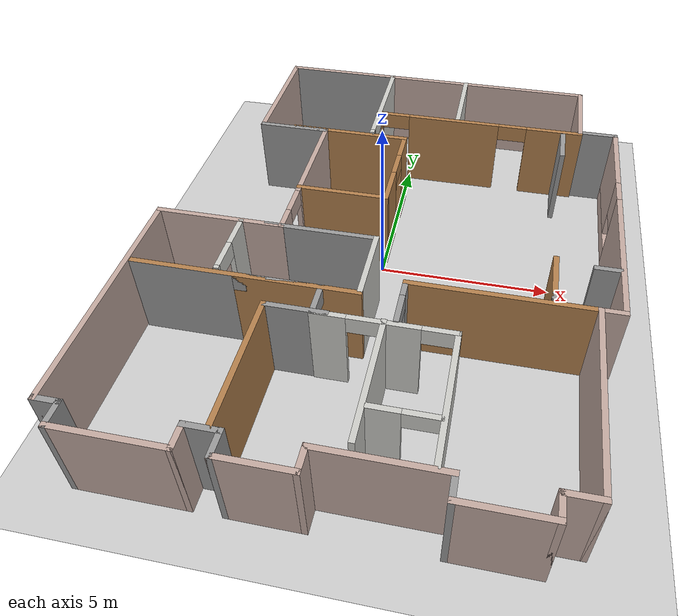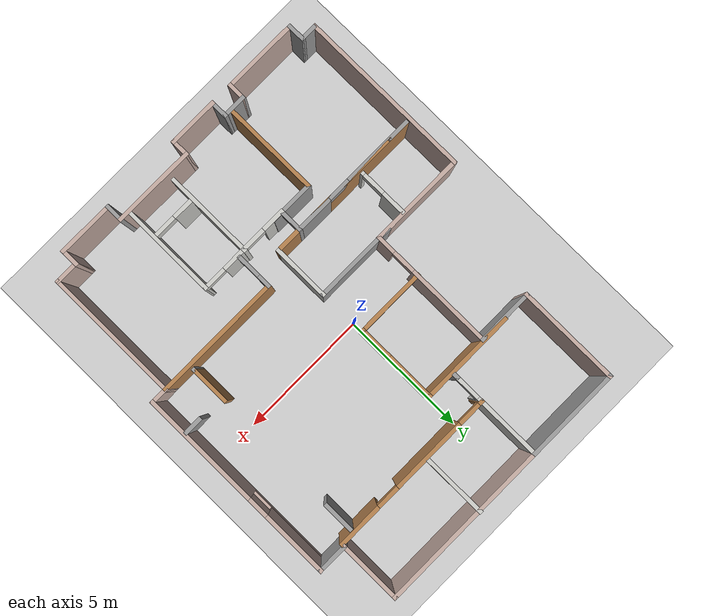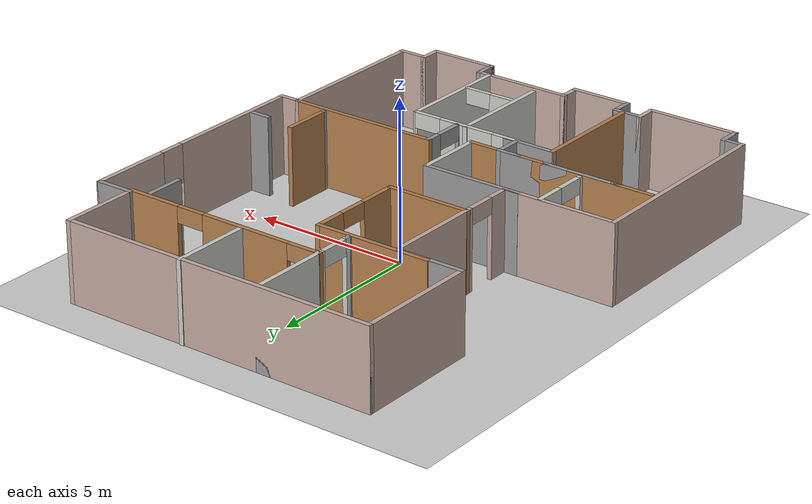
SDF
<sdf version="1.6">
 <world name="default">
  <model name="ground_plane">
   <static>1</static>
   <link name="link">
    <collision name="collision">
     <geometry><plane><normal>0 0 1</normal><size>100 100</size></plane></geometry>
     <surface><friction><ode><mu>100</mu><mu2>50</mu2></ode></friction></surface>
    </collision>
    <visual name="visual">
     <cast_shadows>0</cast_shadows>
     <geometry><plane><normal>0 0 1</normal><size>100 100</size></plane></geometry>
     <material>
      <script><uri>file://media/materials/scripts/gazebo.material</uri><name>Gazebo/Grey</name></script>
     </material>
    </visual>
   </link>
  </model>
  <model name="wall_v1">
   <pose>0.22839 -0.60462 0 0 -0 0</pose>
   <link name="Wall_1">
    <collision name="Wall_1_Collision">
     <geometry><box><size>4 0.15 2.5</size></box></geometry>
     <pose>0 0 1.25 0 -0 0</pose>
    </collision>
    <visual name="Wall_1_Visual">
     <pose>0 0 1.25 0 -0 0</pose>
     <geometry><box><size>4 0.15 2.5</size></box></geometry>
     <material>
      <script><uri>file://media/materials/scripts/gazebo.material</uri><name>Gazebo/Grey</name></script>
      <ambient>0.760784 0.662745 0.627451 1</ambient>
     </material>
     <meta><layer>0</layer></meta>
    </visual>
    <pose>-4.9 6.0117 0 0 0 -1.5708</pose>
   </link>
   <link name="Wall_10">
    <collision name="Wall_10_Collision">
     <geometry><box><size>1 0.15 2.5</size></box></geometry>
     <pose>0 0 1.25 0 -0 0</pose>
    </collision>
    <visual name="Wall_10_Visual">
     <pose>0 0 1.25 0 -0 0</pose>
     <geometry><box><size>1 0.15 2.5</size></box></geometry>
     <material>
      <script><uri>file://media/materials/scripts/gazebo.material</uri><name>Gazebo/Grey</name></script>
      <ambient>1 1 1 1</ambient>
     </material>
     <meta><layer>0</layer></meta>
    </visual>
    <pose>-2.525 -7.3633 0 0 -0 0</pose>
   </link>
   <link name="Wall_11">
    <collision name="Wall_11_Collision">
     <geometry><box><size>0.75 0.15 2.5</size></box></geometry>
     <pose>0 0 1.25 0 -0 0</pose>
    </collision>
    <visual name="Wall_11_Visual">
     <pose>0 0 1.25 0 -0 0</pose>
     <geometry><box><size>0.75 0.15 2.5</size></box></geometry>
     <material>
      <script><uri>file://media/materials/scripts/gazebo.material</uri><name>Gazebo/Grey</name></script>
      <ambient>1 1 1 1</ambient>
     </material>
     <meta><layer>0</layer></meta>
    </visual>
    <pose>-2.1 -7.6633 0 0 0 -1.5708</pose>
   </link>
   <link name="Wall_12">
    <collision name="Wall_12_Collision">
     <geometry><box><size>2 0.15 2.5</size></box></geometry>
     <pose>0 0 1.25 0 -0 0</pose>
    </collision>
    <visual name="Wall_12_Visual">
     <pose>0 0 1.25 0 -0 0</pose>
     <geometry><box><size>2 0.15 2.5</size></box></geometry>
     <material>
      <script><uri>file://media/materials/scripts/gazebo.material</uri><name>Gazebo/Grey</name></script>
      <ambient>0.760784 0.662745 0.627451 1</ambient>
     </material>
     <meta><layer>0</layer></meta>
    </visual>
    <pose>-1.175 -7.9633 0 0 -0 0</pose>
   </link>
   <link name="Wall_13">
    <collision name="Wall_13_Collision">
     <geometry><box><size>0.75 0.15 2.5</size></box></geometry>
     <pose>0 0 1.25 0 -0 0</pose>
    </collision>
    <visual name="Wall_13_Visual">
     <pose>0 0 1.25 0 -0 0</pose>
     <geometry><box><size>0.75 0.15 2.5</size></box></geometry>
     <material>
      <script><uri>file://media/materials/scripts/gazebo.material</uri><name>Gazebo/Grey</name></script>
      <ambient>0.760784 0.662745 0.627451 1</ambient>
     </material>
     <meta><layer>0</layer></meta>
    </visual>
    <pose>-0.25 -7.6633 0 0 -0 1.5708</pose>
   </link>
   <link name="Wall_14">
    <collision name="Wall_14_Collision">
     <geometry><box><size>3.25 0.15 2.5</size></box></geometry>
     <pose>0 0 1.25 0 -0 0</pose>
    </collision>
    <visual name="Wall_14_Visual">
     <pose>0 0 1.25 0 -0 0</pose>
     <geometry><box><size>3.25 0.15 2.5</size></box></geometry>
     <material>
      <script><uri>file://media/materials/scripts/gazebo.material</uri><name>Gazebo/Grey</name></script>
      <ambient>0.760784 0.662745 0.627451 1</ambient>
     </material>
     <meta><layer>0</layer></meta>
    </visual>
    <pose>1.3 -7.3633 0 0 -0 0</pose>
   </link>
   <link name="Wall_15">
    <collision name="Wall_15_Collision">
     <geometry><box><size>0.75 0.15 2.5</size></box></geometry>
     <pose>0 0 1.25 0 -0 0</pose>
    </collision>
    <visual name="Wall_15_Visual">
     <pose>0 0 1.25 0 -0 0</pose>
     <geometry><box><size>0.75 0.15 2.5</size></box></geometry>
     <material>
      <script><uri>file://media/materials/scripts/gazebo.material</uri><name>Gazebo/Grey</name></script>
      <ambient>1 1 1 1</ambient>
     </material>
     <meta><layer>0</layer></meta>
    </visual>
    <pose>2.85 -7.6633 0 0 0 -1.5708</pose>
   </link>
   <link name="Wall_16">
    <collision name="Wall_16_Collision">
     <geometry><box><size>2.25 0.15 2.5</size></box></geometry>
     <pose>0 0 1.25 0 -0 0</pose>
    </collision>
    <visual name="Wall_16_Visual">
     <pose>0 0 1.25 0 -0 0</pose>
     <geometry><box><size>2.25 0.15 2.5</size></box></geometry>
     <material>
      <script><uri>file://media/materials/scripts/gazebo.material</uri><name>Gazebo/Grey</name></script>
      <ambient>0.760784 0.662745 0.627451 1</ambient>
     </material>
     <meta><layer>0</layer></meta>
    </visual>
    <pose>3.9 -7.9633 0 0 -0 0</pose>
   </link>
   <link name="Wall_17">
    <collision name="Wall_17_Collision">
     <geometry><box><size>0.75 0.15 2.5</size></box></geometry>
     <pose>0 0 1.25 0 -0 0</pose>
    </collision>
    <visual name="Wall_17_Visual">
     <pose>0 0 1.25 0 -0 0</pose>
     <geometry><box><size>0.75 0.15 2.5</size></box></geometry>
     <material>
      <script><uri>file://media/materials/scripts/gazebo.material</uri><name>Gazebo/Grey</name></script>
      <ambient>0.760784 0.662745 0.627451 1</ambient>
     </material>
     <meta><layer>0</layer></meta>
    </visual>
    <pose>4.95 -7.6633 0 0 -0 1.5708</pose>
   </link>
   <link name="Wall_18">
    <collision name="Wall_18_Collision">
     <geometry><box><size>1 0.15 2.5</size></box></geometry>
     <pose>0 0 1.25 0 -0 0</pose>
    </collision>
    <visual name="Wall_18_Visual">
     <pose>0 0 1.25 0 -0 0</pose>
     <geometry><box><size>1 0.15 2.5</size></box></geometry>
     <material>
      <script><uri>file://media/materials/scripts/gazebo.material</uri><name>Gazebo/Grey</name></script>
      <ambient>0.760784 0.662745 0.627451 1</ambient>
     </material>
     <meta><layer>0</layer></meta>
    </visual>
    <pose>5.375 -7.3633 0 0 -0 0</pose>
   </link>
   <link name="Wall_19">
    <collision name="Wall_19_Collision">
     <geometry><box><size>5.25 0.15 2.5</size></box></geometry>
     <pose>0 0 1.25 0 -0 0</pose>
    </collision>
    <visual name="Wall_19_Visual">
     <pose>0 0 1.25 0 -0 0</pose>
     <geometry><box><size>5.25 0.15 2.5</size></box></geometry>
     <material>
      <script><uri>file://media/materials/scripts/gazebo.material</uri><name>Gazebo/Grey</name></script>
      <ambient>0.760784 0.662745 0.627451 1</ambient>
     </material>
     <meta><layer>0</layer></meta>
    </visual>
    <pose>5.8 -4.8133 0 0 -0 1.5708</pose>
   </link>
   <link name="Wall_2">
    <collision name="Wall_2_Collision">
     <geometry><box><size>2.25 0.15 2.5</size></box></geometry>
     <pose>0 0 1.25 0 -0 0</pose>
    </collision>
    <visual name="Wall_2_Visual">
     <pose>0 0 1.25 0 -0 0</pose>
     <geometry><box><size>2.25 0.15 2.5</size></box></geometry>
     <material>
      <script><uri>file://media/materials/scripts/gazebo.material</uri><name>Gazebo/Grey</name></script>
      <ambient>1 1 1 1</ambient>
     </material>
     <meta><layer>0</layer></meta>
    </visual>
    <pose>-3.85 4.0867 0 0 -0 0</pose>
   </link>
   <link name="Wall_20">
    <collision name="Wall_20_Collision">
     <geometry><box><size>0.75 0.15 2.5</size></box></geometry>
     <pose>0 0 1.25 0 -0 0</pose>
    </collision>
    <visual name="Wall_20_Visual">
     <pose>0 0 1.25 0 -0 0</pose>
     <geometry><box><size>0.75 0.15 2.5</size></box></geometry>
     <material>
      <script><uri>file://media/materials/scripts/gazebo.material</uri><name>Gazebo/Grey</name></script>
      <ambient>0.760784 0.662745 0.627451 1</ambient>
     </material>
     <meta><layer>0</layer></meta>
    </visual>
    <pose>6.1 -2.2633 0 0 -0 0</pose>
   </link>
   <link name="Wall_21">
    <pose>6.4 1.6617 0 0 -0 1.5708</pose>
    <visual name="Wall_21_Visual_0">
     <pose>-1.69592 0 1.25 0 -0 0</pose>
     <geometry><box><size>4.60816 0.15 2.5</size></box></geometry>
     <material>
      <script><uri>file://media/materials/scripts/gazebo.material</uri><name>Gazebo/Grey</name></script>
      <ambient>0.760784 0.662745 0.627451 1</ambient>
     </material>
     <meta><layer>0</layer></meta>
    </visual>
    <collision name="Wall_21_Collision_0">
     <geometry><box><size>4.60816 0.15 2.5</size></box></geometry>
     <pose>-1.69592 0 1.25 0 -0 0</pose>
    </collision>
    <visual name="Wall_21_Visual_1">
     <pose>2.30408 0 0.25 0 -0 0</pose>
     <geometry><box><size>3.39184 0.15 0.5</size></box></geometry>
     <material>
      <script><uri>file://media/materials/scripts/gazebo.material</uri><name>Gazebo/Grey</name></script>
      <ambient>0.760784 0.662745 0.627451 1</ambient>
     </material>
     <meta><layer>0</layer></meta>
    </visual>
    <collision name="Wall_21_Collision_1">
     <geometry><box><size>3.39184 0.15 0.5</size></box></geometry>
     <pose>2.30408 0 0.25 0 -0 0</pose>
    </collision>
    <visual name="Wall_21_Visual_2">
     <pose>2.70408 0 1.5 0 -0 0</pose>
     <geometry><box><size>2.59184 0.15 2</size></box></geometry>
     <material>
      <script><uri>file://media/materials/scripts/gazebo.material</uri><name>Gazebo/Grey</name></script>
      <ambient>0.760784 0.662745 0.627451 1</ambient>
     </material>
     <meta><layer>0</layer></meta>
    </visual>
    <collision name="Wall_21_Collision_2">
     <geometry><box><size>2.59184 0.15 2</size></box></geometry>
     <pose>2.70408 0 1.5 0 -0 0</pose>
    </collision>
    <visual name="Wall_21_Visual_3">
     <pose>1.00816 0 1.9 0 -0 0</pose>
     <geometry><box><size>0.8 0.15 1.2</size></box></geometry>
     <material>
      <script><uri>file://media/materials/scripts/gazebo.material</uri><name>Gazebo/Grey</name></script>
      <ambient>0.760784 0.662745 0.627451 1</ambient>
     </material>
     <meta><layer>0</layer></meta>
    </visual>
    <collision name="Wall_21_Collision_3">
     <geometry><box><size>0.8 0.15 1.2</size></box></geometry>
     <pose>1.00816 0 1.9 0 -0 0</pose>
    </collision>
   </link>
   <link name="Wall_22">
    <collision name="Wall_22_Collision">
     <geometry><box><size>1.25 0.15 2.5</size></box></geometry>
     <pose>0 0 1.25 0 -0 0</pose>
    </collision>
    <visual name="Wall_22_Visual">
     <pose>0 0 1.25 0 -0 0</pose>
     <geometry><box><size>1.25 0.15 2.5</size></box></geometry>
     <material>
      <script><uri>file://media/materials/scripts/gazebo.material</uri><name>Gazebo/Grey</name></script>
      <ambient>1 1 1 1</ambient>
     </material>
     <meta><layer>0</layer></meta>
    </visual>
    <pose>5.85 5.5867 0 0 -0 3.14159</pose>
   </link>
   <link name="Wall_23">
    <collision name="Wall_23_Collision">
     <geometry><box><size>2.5 0.15 2.5</size></box></geometry>
     <pose>0 0 1.25 0 -0 0</pose>
    </collision>
    <visual name="Wall_23_Visual">
     <pose>0 0 1.25 0 -0 0</pose>
     <geometry><box><size>2.5 0.15 2.5</size></box></geometry>
     <material>
      <script><uri>file://media/materials/scripts/gazebo.material</uri><name>Gazebo/Grey</name></script>
      <ambient>0.760784 0.662745 0.627451 1</ambient>
     </material>
     <meta><layer>0</layer></meta>
    </visual>
    <pose>5.3 6.7617 0 0 -0 1.5708</pose>
   </link>
   <link name="Wall_24">
    <collision name="Wall_24_Collision">
     <geometry><box><size>10.35 0.15 2.5</size></box></geometry>
     <pose>0 0 1.25 0 -0 0</pose>
    </collision>
    <visual name="Wall_24_Visual">
     <pose>0 0 1.25 0 -0 0</pose>
     <geometry><box><size>10.35 0.15 2.5</size></box></geometry>
     <material>
      <script><uri>file://media/materials/scripts/gazebo.material</uri><name>Gazebo/Grey</name></script>
      <ambient>0.760784 0.662745 0.627451 1</ambient>
     </material>
     <meta><layer>0</layer></meta>
    </visual>
    <pose>0.2 7.9367 0 0 -0 3.14159</pose>
   </link>
   <link name="Wall_25">
    <collision name="Wall_25_Collision">
     <geometry><box><size>3.75 0.15 2.5</size></box></geometry>
     <pose>0 0 1.25 0 -0 0</pose>
    </collision>
    <visual name="Wall_25_Visual">
     <pose>0 0 1.25 0 -0 0</pose>
     <geometry><box><size>3.75 0.15 2.5</size></box></geometry>
     <material>
      <script><uri>file://media/materials/scripts/gazebo.material</uri><name>Gazebo/Grey</name></script>
      <ambient>1 1 1 1</ambient>
     </material>
     <meta><layer>0</layer></meta>
    </visual>
    <pose>-3.1 7.9367 0 0 -0 0</pose>
   </link>
   <link name="Wall_26">
    <pose>-1.3 6.1367 0 0 0 -1.5708</pose>
    <visual name="Wall_26_Visual_0">
     <pose>-0.532989 0 1.25 0 -0 0</pose>
     <geometry><box><size>2.68402 0.15 2.5</size></box></geometry>
     <material>
      <script><uri>file://media/materials/scripts/gazebo.material</uri><name>Gazebo/CeilingTiled</name></script>
      <ambient>1 1 1 1</ambient>
     </material>
     <meta><layer>0</layer></meta>
    </visual>
    <collision name="Wall_26_Collision_0">
     <geometry><box><size>2.68402 0.15 2.5</size></box></geometry>
     <pose>-0.532989 0 1.25 0 -0 0</pose>
    </collision>
    <visual name="Wall_26_Visual_1">
     <pose>1.79201 0 1.25 0 -0 0</pose>
     <geometry><box><size>0.165977 0.15 2.5</size></box></geometry>
     <material>
      <script><uri>file://media/materials/scripts/gazebo.material</uri><name>Gazebo/CeilingTiled</name></script>
      <ambient>1 1 1 1</ambient>
     </material>
     <meta><layer>0</layer></meta>
    </visual>
    <collision name="Wall_26_Collision_1">
     <geometry><box><size>0.165977 0.15 2.5</size></box></geometry>
     <pose>1.79201 0 1.25 0 -0 0</pose>
    </collision>
    <visual name="Wall_26_Visual_2">
     <pose>1.25902 0 2.25 0 -0 0</pose>
     <geometry><box><size>0.9 0.15 0.5</size></box></geometry>
     <material>
      <script><uri>file://media/materials/scripts/gazebo.material</uri><name>Gazebo/CeilingTiled</name></script>
      <ambient>1 1 1 1</ambient>
     </material>
     <meta><layer>0</layer></meta>
    </visual>
    <collision name="Wall_26_Collision_2">
     <geometry><box><size>0.9 0.15 0.5</size></box></geometry>
     <pose>1.25902 0 2.25 0 -0 0</pose>
    </collision>
   </link>
   <link name="Wall_27">
    <collision name="Wall_27_Collision">
     <geometry><box><size>0.25 0.15 2.5</size></box></geometry>
     <pose>0 0 1.25 0 -0 0</pose>
    </collision>
    <visual name="Wall_27_Visual">
     <pose>0 0 1.25 0 -0 0</pose>
     <geometry><box><size>0.25 0.15 2.5</size></box></geometry>
     <material>
      <script><uri>file://media/materials/scripts/gazebo.material</uri><name>Gazebo/Grey</name></script>
      <ambient>1 1 1 1</ambient>
     </material>
     <meta><layer>0</layer></meta>
    </visual>
    <pose>-1.3 4.2867 0 0 0 -1.5708</pose>
   </link>
   <link name="Wall_3">
    <pose>-2.8 1.6617 0 0 0 -1.5708</pose>
    <visual name="Wall_3_Visual_0">
     <pose>-0.835272 0 1.25 0 -0 0</pose>
     <geometry><box><size>3.32946 0.15 2.5</size></box></geometry>
     <material>
      <script><uri>file://media/materials/scripts/gazebo.material</uri><name>Gazebo/Grey</name></script>
      <ambient>0.760784 0.662745 0.627451 1</ambient>
     </material>
     <meta><layer>0</layer></meta>
    </visual>
    <collision name="Wall_3_Collision_0">
     <geometry><box><size>3.32946 0.15 2.5</size></box></geometry>
     <pose>-0.835272 0 1.25 0 -0 0</pose>
    </collision>
    <visual name="Wall_3_Visual_1">
     <pose>2.11473 0 1.25 0 -0 0</pose>
     <geometry><box><size>0.770544 0.15 2.5</size></box></geometry>
     <material>
      <script><uri>file://media/materials/scripts/gazebo.material</uri><name>Gazebo/Grey</name></script>
      <ambient>0.760784 0.662745 0.627451 1</ambient>
     </material>
     <meta><layer>0</layer></meta>
    </visual>
    <collision name="Wall_3_Collision_1">
     <geometry><box><size>0.770544 0.15 2.5</size></box></geometry>
     <pose>2.11473 0 1.25 0 -0 0</pose>
    </collision>
    <visual name="Wall_3_Visual_2">
     <pose>1.27946 0 2.25 0 -0 0</pose>
     <geometry><box><size>0.9 0.15 0.5</size></box></geometry>
     <material>
      <script><uri>file://media/materials/scripts/gazebo.material</uri><name>Gazebo/Grey</name></script>
      <ambient>0.760784 0.662745 0.627451 1</ambient>
     </material>
     <meta><layer>0</layer></meta>
    </visual>
    <collision name="Wall_3_Collision_2">
     <geometry><box><size>0.9 0.15 0.5</size></box></geometry>
     <pose>1.27946 0 2.25 0 -0 0</pose>
    </collision>
   </link>
   <link name="Wall_30">
    <collision name="Wall_30_Collision">
     <geometry><box><size>3.75 0.15 2.5</size></box></geometry>
     <pose>0 0 1.25 0 -0 0</pose>
    </collision>
    <visual name="Wall_30_Visual">
     <pose>0 0 1.25 0 -0 0</pose>
     <geometry><box><size>3.75 0.15 2.5</size></box></geometry>
     <material>
      <script><uri>file://media/materials/scripts/gazebo.material</uri><name>Gazebo/Wood</name></script>
      <ambient>1 1 1 1</ambient>
     </material>
     <meta><layer>0</layer></meta>
    </visual>
    <pose>-2.00939 4.13287 0 0 -0 0</pose>
   </link>
   <link name="Wall_31">
    <pose>-0.209392 2.58287 0 0 0 -1.5708</pose>
    <visual name="Wall_31_Visual_0">
     <pose>-1.1076 0 1.25 0 -0 0</pose>
     <geometry><box><size>1.03481 0.15 2.5</size></box></geometry>
     <material>
      <script><uri>file://media/materials/scripts/gazebo.material</uri><name>Gazebo/Wood</name></script>
      <ambient>1 1 1 1</ambient>
     </material>
     <meta><layer>0</layer></meta>
    </visual>
    <collision name="Wall_31_Collision_0">
     <geometry><box><size>1.03481 0.15 2.5</size></box></geometry>
     <pose>-1.1076 0 1.25 0 -0 0</pose>
    </collision>
    <visual name="Wall_31_Visual_1">
     <pose>0.967405 0 1.25 0 -0 0</pose>
     <geometry><box><size>1.31519 0.15 2.5</size></box></geometry>
     <material>
      <script><uri>file://media/materials/scripts/gazebo.material</uri><name>Gazebo/Wood</name></script>
      <ambient>1 1 1 1</ambient>
     </material>
     <meta><layer>0</layer></meta>
    </visual>
    <collision name="Wall_31_Collision_1">
     <geometry><box><size>1.31519 0.15 2.5</size></box></geometry>
     <pose>0.967405 0 1.25 0 -0 0</pose>
    </collision>
    <visual name="Wall_31_Visual_2">
     <pose>-0.140189 0 2.25 0 -0 0</pose>
     <geometry><box><size>0.9 0.15 0.5</size></box></geometry>
     <material>
      <script><uri>file://media/materials/scripts/gazebo.material</uri><name>Gazebo/Wood</name></script>
      <ambient>1 1 1 1</ambient>
     </material>
     <meta><layer>0</layer></meta>
    </visual>
    <collision name="Wall_31_Collision_2">
     <geometry><box><size>0.9 0.15 0.5</size></box></geometry>
     <pose>-0.140189 0 2.25 0 -0 0</pose>
    </collision>
   </link>
   <link name="Wall_32">
    <collision name="Wall_32_Collision">
     <geometry><box><size>2.75 0.15 2.5</size></box></geometry>
     <pose>0 0 1.25 0 -0 0</pose>
    </collision>
    <visual name="Wall_32_Visual">
     <pose>0 0 1.25 0 -0 0</pose>
     <geometry><box><size>2.75 0.15 2.5</size></box></geometry>
     <material>
      <script><uri>file://media/materials/scripts/gazebo.material</uri><name>Gazebo/Wood</name></script>
      <ambient>1 1 1 1</ambient>
     </material>
     <meta><layer>0</layer></meta>
    </visual>
    <pose>-1.50939 1.03287 0 0 -0 3.14159</pose>
   </link>
   <link name="Wall_34">
    <collision name="Wall_34_Collision">
     <geometry><box><size>3.25 0.15 2.5</size></box></geometry>
     <pose>0 0 1.25 0 -0 0</pose>
    </collision>
    <visual name="Wall_34_Visual">
     <pose>0 0 1.25 0 -0 0</pose>
     <geometry><box><size>3.25 0.15 2.5</size></box></geometry>
     <material>
      <script><uri>file://media/materials/scripts/gazebo.material</uri><name>Gazebo/Grey</name></script>
      <ambient>1 1 1 1</ambient>
     </material>
     <meta><layer>0</layer></meta>
    </visual>
    <pose>-1.67419 -0.761565 0 0 -0 0</pose>
   </link>
   <link name="Wall_35">
    <collision name="Wall_35_Collision">
     <geometry><box><size>2.25 0.15 2.5</size></box></geometry>
     <pose>0 0 1.25 0 -0 0</pose>
    </collision>
    <visual name="Wall_35_Visual">
     <pose>0 0 1.25 0 -0 0</pose>
     <geometry><box><size>2.25 0.15 2.5</size></box></geometry>
     <material>
      <script><uri>file://media/materials/scripts/gazebo.material</uri><name>Gazebo/CeilingTiled</name></script>
      <ambient>1 1 1 1</ambient>
     </material>
     <meta><layer>0</layer></meta>
    </visual>
    <pose>-0.124188 -1.81157 0 0 0 -1.5708</pose>
   </link>
   <link name="Wall_36">
    <collision name="Wall_36_Collision">
     <geometry><box><size>6.25 0.15 2.5</size></box></geometry>
     <pose>0 0 1.25 0 -0 0</pose>
    </collision>
    <visual name="Wall_36_Visual">
     <pose>0 0 1.25 0 -0 0</pose>
     <geometry><box><size>6.25 0.15 2.5</size></box></geometry>
     <material>
      <script><uri>file://media/materials/scripts/gazebo.material</uri><name>Gazebo/Wood</name></script>
      <ambient>1 1 1 1</ambient>
     </material>
     <meta><layer>0</layer></meta>
    </visual>
    <pose>-3.17419 -2.86157 0 0 -0 3.14159</pose>
   </link>
   <link name="Wall_37">
    <pose>-3.67419 -2.86157 0 0 -0 0</pose>
    <visual name="Wall_37_Visual_0">
     <pose>-1.2061 0 1.25 0 -0 0</pose>
     <geometry><box><size>2.8378 0.15 2.5</size></box></geometry>
     <material>
      <script><uri>file://media/materials/scripts/gazebo.material</uri><name>Gazebo/Grey</name></script>
      <ambient>1 1 1 1</ambient>
     </material>
     <meta><layer>0</layer></meta>
    </visual>
    <collision name="Wall_37_Collision_0">
     <geometry><box><size>2.8378 0.15 2.5</size></box></geometry>
     <pose>-1.2061 0 1.25 0 -0 0</pose>
    </collision>
    <visual name="Wall_37_Visual_1">
     <pose>1.8689 0 1.25 0 -0 0</pose>
     <geometry><box><size>1.5122 0.15 2.5</size></box></geometry>
     <material>
      <script><uri>file://media/materials/scripts/gazebo.material</uri><name>Gazebo/Grey</name></script>
      <ambient>1 1 1 1</ambient>
     </material>
     <meta><layer>0</layer></meta>
    </visual>
    <collision name="Wall_37_Collision_1">
     <geometry><box><size>1.5122 0.15 2.5</size></box></geometry>
     <pose>1.8689 0 1.25 0 -0 0</pose>
    </collision>
    <visual name="Wall_37_Visual_2">
     <pose>0.662802 0 2.25 0 -0 0</pose>
     <geometry><box><size>0.9 0.15 0.5</size></box></geometry>
     <material>
      <script><uri>file://media/materials/scripts/gazebo.material</uri><name>Gazebo/Grey</name></script>
      <ambient>1 1 1 1</ambient>
     </material>
     <meta><layer>0</layer></meta>
    </visual>
    <collision name="Wall_37_Collision_2">
     <geometry><box><size>0.9 0.15 0.5</size></box></geometry>
     <pose>0.662802 0 2.25 0 -0 0</pose>
    </collision>
   </link>
   <link name="Wall_38">
    <pose>-1.12419 -3.28656 0 0 0 -1.5708</pose>
    <visual name="Wall_38_Visual_0">
     <pose>-0.487291 0 1.25 0 -0 0</pose>
     <geometry><box><size>0.025419 0.15 2.5</size></box></geometry>
     <material>
      <script><uri>file://media/materials/scripts/gazebo.material</uri><name>Gazebo/Grey</name></script>
      <ambient>1 1 1 1</ambient>
     </material>
     <meta><layer>0</layer></meta>
    </visual>
    <collision name="Wall_38_Collision_0">
     <geometry><box><size>0.025419 0.15 2.5</size></box></geometry>
     <pose>-0.487291 0 1.25 0 -0 0</pose>
    </collision>
    <visual name="Wall_38_Visual_1">
     <pose>0.462709 0 1.25 0 -0 0</pose>
     <geometry><box><size>0.074581 0.15 2.5</size></box></geometry>
     <material>
      <script><uri>file://media/materials/scripts/gazebo.material</uri><name>Gazebo/Grey</name></script>
      <ambient>1 1 1 1</ambient>
     </material>
     <meta><layer>0</layer></meta>
    </visual>
    <collision name="Wall_38_Collision_1">
     <geometry><box><size>0.074581 0.15 2.5</size></box></geometry>
     <pose>0.462709 0 1.25 0 -0 0</pose>
    </collision>
    <visual name="Wall_38_Visual_2">
     <pose>-0.024581 0 2.25 0 -0 0</pose>
     <geometry><box><size>0.9 0.15 0.5</size></box></geometry>
     <material>
      <script><uri>file://media/materials/scripts/gazebo.material</uri><name>Gazebo/Grey</name></script>
      <ambient>1 1 1 1</ambient>
     </material>
     <meta><layer>0</layer></meta>
    </visual>
    <collision name="Wall_38_Collision_2">
     <geometry><box><size>0.9 0.15 0.5</size></box></geometry>
     <pose>-0.024581 0 2.25 0 -0 0</pose>
    </collision>
   </link>
   <link name="Wall_39">
    <pose>0.675812 -3.71156 0 0 -0 0</pose>
    <visual name="Wall_39_Visual_0">
     <pose>-1.41009 0 1.25 0 -0 0</pose>
     <geometry><box><size>0.929825 0.15 2.5</size></box></geometry>
     <material>
      <script><uri>file://media/materials/scripts/gazebo.material</uri><name>Gazebo/CeilingTiled</name></script>
      <ambient>1 1 1 1</ambient>
     </material>
     <meta><layer>0</layer></meta>
    </visual>
    <collision name="Wall_39_Collision_0">
     <geometry><box><size>0.929825 0.15 2.5</size></box></geometry>
     <pose>-1.41009 0 1.25 0 -0 0</pose>
    </collision>
    <visual name="Wall_39_Visual_1">
     <pose>0.435832 0 1.25 0 -0 0</pose>
     <geometry><box><size>0.962014 0.15 2.5</size></box></geometry>
     <material>
      <script><uri>file://media/materials/scripts/gazebo.material</uri><name>Gazebo/CeilingTiled</name></script>
      <ambient>1 1 1 1</ambient>
     </material>
     <meta><layer>0</layer></meta>
    </visual>
    <collision name="Wall_39_Collision_1">
     <geometry><box><size>0.962014 0.15 2.5</size></box></geometry>
     <pose>0.435832 0 1.25 0 -0 0</pose>
    </collision>
    <visual name="Wall_39_Visual_2">
     <pose>1.84592 0 1.25 0 -0 0</pose>
     <geometry><box><size>0.058161 0.15 2.5</size></box></geometry>
     <material>
      <script><uri>file://media/materials/scripts/gazebo.material</uri><name>Gazebo/CeilingTiled</name></script>
      <ambient>1 1 1 1</ambient>
     </material>
     <meta><layer>0</layer></meta>
    </visual>
    <collision name="Wall_39_Collision_2">
     <geometry><box><size>0.058161 0.15 2.5</size></box></geometry>
     <pose>1.84592 0 1.25 0 -0 0</pose>
    </collision>
    <visual name="Wall_39_Visual_3">
     <pose>-0.495175 0 2.25 0 -0 0</pose>
     <geometry><box><size>0.9 0.15 0.5</size></box></geometry>
     <material>
      <script><uri>file://media/materials/scripts/gazebo.material</uri><name>Gazebo/CeilingTiled</name></script>
      <ambient>1 1 1 1</ambient>
     </material>
     <meta><layer>0</layer></meta>
    </visual>
    <collision name="Wall_39_Collision_3">
     <geometry><box><size>0.9 0.15 0.5</size></box></geometry>
     <pose>-0.495175 0 2.25 0 -0 0</pose>
    </collision>
    <visual name="Wall_39_Visual_4">
     <pose>1.36684 0 2.25 0 -0 0</pose>
     <geometry><box><size>0.9 0.15 0.5</size></box></geometry>
     <material>
      <script><uri>file://media/materials/scripts/gazebo.material</uri><name>Gazebo/CeilingTiled</name></script>
      <ambient>1 1 1 1</ambient>
     </material>
     <meta><layer>0</layer></meta>
    </visual>
    <collision name="Wall_39_Collision_4">
     <geometry><box><size>0.9 0.15 0.5</size></box></geometry>
     <pose>1.36684 0 2.25 0 -0 0</pose>
    </collision>
   </link>
   <link name="Wall_4">
    <collision name="Wall_4_Collision">
     <geometry><box><size>3.75 0.15 2.5</size></box></geometry>
     <pose>0 0 1.25 0 -0 0</pose>
    </collision>
    <visual name="Wall_4_Visual">
     <pose>0 0 1.25 0 -0 0</pose>
     <geometry><box><size>3.75 0.15 2.5</size></box></geometry>
     <material>
      <script><uri>file://media/materials/scripts/gazebo.material</uri><name>Gazebo/Grey</name></script>
      <ambient>0.760784 0.662745 0.627451 1</ambient>
     </material>
     <meta><layer>0</layer></meta>
    </visual>
    <pose>-4.6 -0.7633 0 0 -0 3.14159</pose>
   </link>
   <link name="Wall_40">
    <collision name="Wall_40_Collision">
     <geometry><box><size>3.75 0.15 2.5</size></box></geometry>
     <pose>0 0 1.25 0 -0 0</pose>
    </collision>
    <visual name="Wall_40_Visual">
     <pose>0 0 1.25 0 -0 0</pose>
     <geometry><box><size>3.75 0.15 2.5</size></box></geometry>
     <material>
      <script><uri>file://media/materials/scripts/gazebo.material</uri><name>Gazebo/CeilingTiled</name></script>
      <ambient>1 1 1 1</ambient>
     </material>
     <meta><layer>0</layer></meta>
    </visual>
    <pose>2.47581 -5.51157 0 0 0 -1.5708</pose>
   </link>
   <link name="Wall_42">
    <collision name="Wall_42_Collision">
     <geometry><box><size>3.5 0.15 2.5</size></box></geometry>
     <pose>0 0 1.25 0 -0 0</pose>
    </collision>
    <visual name="Wall_42_Visual">
     <pose>0 0 1.25 0 -0 0</pose>
     <geometry><box><size>3.5 0.15 2.5</size></box></geometry>
     <material>
      <script><uri>file://media/materials/scripts/gazebo.material</uri><name>Gazebo/CeilingTiled</name></script>
      <ambient>1 1 1 1</ambient>
     </material>
     <meta><layer>0</layer></meta>
    </visual>
    <pose>0.659442 -5.36259 0 0 0 -1.5708</pose>
   </link>
   <link name="Wall_44">
    <collision name="Wall_44_Collision">
     <geometry><box><size>1.75 0.15 2.5</size></box></geometry>
     <pose>0 0 1.25 0 -0 0</pose>
    </collision>
    <visual name="Wall_44_Visual">
     <pose>0 0 1.25 0 -0 0</pose>
     <geometry><box><size>1.75 0.15 2.5</size></box></geometry>
     <material>
      <script><uri>file://media/materials/scripts/gazebo.material</uri><name>Gazebo/Grey</name></script>
      <ambient>1 1 1 1</ambient>
     </material>
     <meta><layer>0</layer></meta>
    </visual>
    <pose>-1.57697 -3.68759 0 0 -0 3.14159</pose>
   </link>
   <link name="Wall_45">
    <collision name="Wall_45_Collision">
     <geometry><box><size>3.75 0.15 2.5</size></box></geometry>
     <pose>0 0 1.25 0 -0 0</pose>
    </collision>
    <visual name="Wall_45_Visual">
     <pose>0 0 1.25 0 -0 0</pose>
     <geometry><box><size>3.75 0.15 2.5</size></box></geometry>
     <material>
      <script><uri>file://media/materials/scripts/gazebo.material</uri><name>Gazebo/Wood</name></script>
      <ambient>1 1 1 1</ambient>
     </material>
     <meta><layer>0</layer></meta>
    </visual>
    <pose>-2.37697 -5.48759 0 0 0 -1.5708</pose>
   </link>
   <link name="Wall_47">
    <pose>-3.96899 -1.73977 0 0 0 -1.5708</pose>
    <visual name="Wall_47_Visual_0">
     <pose>-0.509195 0 1.25 0 -0 0</pose>
     <geometry><box><size>0.98161 0.15 2.5</size></box></geometry>
     <material>
      <script><uri>file://media/materials/scripts/gazebo.material</uri><name>Gazebo/CeilingTiled</name></script>
      <ambient>1 1 1 1</ambient>
     </material>
     <meta><layer>0</layer></meta>
    </visual>
    <collision name="Wall_47_Collision_0">
     <geometry><box><size>0.98161 0.15 2.5</size></box></geometry>
     <pose>-0.509195 0 1.25 0 -0 0</pose>
    </collision>
    <visual name="Wall_47_Visual_1">
     <pose>0.940805 0 1.25 0 -0 0</pose>
     <geometry><box><size>0.11839 0.15 2.5</size></box></geometry>
     <material>
      <script><uri>file://media/materials/scripts/gazebo.material</uri><name>Gazebo/CeilingTiled</name></script>
      <ambient>1 1 1 1</ambient>
     </material>
     <meta><layer>0</layer></meta>
    </visual>
    <collision name="Wall_47_Collision_1">
     <geometry><box><size>0.11839 0.15 2.5</size></box></geometry>
     <pose>0.940805 0 1.25 0 -0 0</pose>
    </collision>
    <visual name="Wall_47_Visual_2">
     <pose>0.43161 0 2.25 0 -0 0</pose>
     <geometry><box><size>0.9 0.15 0.5</size></box></geometry>
     <material>
      <script><uri>file://media/materials/scripts/gazebo.material</uri><name>Gazebo/CeilingTiled</name></script>
      <ambient>1 1 1 1</ambient>
     </material>
     <meta><layer>0</layer></meta>
    </visual>
    <collision name="Wall_47_Collision_2">
     <geometry><box><size>0.9 0.15 0.5</size></box></geometry>
     <pose>0.43161 0 2.25 0 -0 0</pose>
    </collision>
   </link>
   <link name="Wall_49">
    <pose>1.59244 -6.13481 0 0 -0 0</pose>
    <visual name="Wall_49_Visual_0">
     <pose>-0.463996 0 1.25 0 -0 0</pose>
     <geometry><box><size>0.822009 0.15 2.5</size></box></geometry>
     <material>
      <script><uri>file://media/materials/scripts/gazebo.material</uri><name>Gazebo/CeilingTiled</name></script>
      <ambient>1 1 1 1</ambient>
     </material>
     <meta><layer>0</layer></meta>
    </visual>
    <collision name="Wall_49_Collision_0">
     <geometry><box><size>0.822009 0.15 2.5</size></box></geometry>
     <pose>-0.463996 0 1.25 0 -0 0</pose>
    </collision>
    <visual name="Wall_49_Visual_1">
     <pose>0.861004 0 1.25 0 -0 0</pose>
     <geometry><box><size>0.027991 0.15 2.5</size></box></geometry>
     <material>
      <script><uri>file://media/materials/scripts/gazebo.material</uri><name>Gazebo/CeilingTiled</name></script>
      <ambient>1 1 1 1</ambient>
     </material>
     <meta><layer>0</layer></meta>
    </visual>
    <collision name="Wall_49_Collision_1">
     <geometry><box><size>0.027991 0.15 2.5</size></box></geometry>
     <pose>0.861004 0 1.25 0 -0 0</pose>
    </collision>
    <visual name="Wall_49_Visual_2">
     <pose>0.397009 0 2.25 0 -0 0</pose>
     <geometry><box><size>0.9 0.15 0.5</size></box></geometry>
     <material>
      <script><uri>file://media/materials/scripts/gazebo.material</uri><name>Gazebo/CeilingTiled</name></script>
      <ambient>1 1 1 1</ambient>
     </material>
     <meta><layer>0</layer></meta>
    </visual>
    <collision name="Wall_49_Collision_2">
     <geometry><box><size>0.9 0.15 0.5</size></box></geometry>
     <pose>0.397009 0 2.25 0 -0 0</pose>
    </collision>
   </link>
   <link name="Wall_5">
    <collision name="Wall_5_Collision">
     <geometry><box><size>6.75 0.15 2.5</size></box></geometry>
     <pose>0 0 1.25 0 -0 0</pose>
    </collision>
    <visual name="Wall_5_Visual">
     <pose>0 0 1.25 0 -0 0</pose>
     <geometry><box><size>6.75 0.15 2.5</size></box></geometry>
     <material>
      <script><uri>file://media/materials/scripts/gazebo.material</uri><name>Gazebo/Grey</name></script>
      <ambient>0.760784 0.662745 0.627451 1</ambient>
     </material>
     <meta><layer>0</layer></meta>
    </visual>
    <pose>-6.4 -4.0633 0 0 0 -1.5708</pose>
   </link>
   <link name="Wall_51">
    <pose>1.99103 5.48948 0 0 -0 0</pose>
    <visual name="Wall_51_Visual_0">
     <pose>-3.2699 0 1.25 0 -0 0</pose>
     <geometry><box><size>0.210204 0.15 2.5</size></box></geometry>
     <material>
      <script><uri>file://media/materials/scripts/gazebo.material</uri><name>Gazebo/Wood</name></script>
      <ambient>1 1 1 1</ambient>
     </material>
     <meta><layer>0</layer></meta>
    </visual>
    <collision name="Wall_51_Collision_0">
     <geometry><box><size>0.210204 0.15 2.5</size></box></geometry>
     <pose>-3.2699 0 1.25 0 -0 0</pose>
    </collision>
    <visual name="Wall_51_Visual_1">
     <pose>-0.786281 0 1.25 0 -0 0</pose>
     <geometry><box><size>2.95703 0.15 2.5</size></box></geometry>
     <material>
      <script><uri>file://media/materials/scripts/gazebo.material</uri><name>Gazebo/Wood</name></script>
      <ambient>1 1 1 1</ambient>
     </material>
     <meta><layer>0</layer></meta>
    </visual>
    <collision name="Wall_51_Collision_1">
     <geometry><box><size>2.95703 0.15 2.5</size></box></geometry>
     <pose>-0.786281 0 1.25 0 -0 0</pose>
    </collision>
    <visual name="Wall_51_Visual_2">
     <pose>2.48362 0 1.25 0 -0 0</pose>
     <geometry><box><size>1.78277 0.15 2.5</size></box></geometry>
     <material>
      <script><uri>file://media/materials/scripts/gazebo.material</uri><name>Gazebo/Wood</name></script>
      <ambient>1 1 1 1</ambient>
     </material>
     <meta><layer>0</layer></meta>
    </visual>
    <collision name="Wall_51_Collision_2">
     <geometry><box><size>1.78277 0.15 2.5</size></box></geometry>
     <pose>2.48362 0 1.25 0 -0 0</pose>
    </collision>
    <visual name="Wall_51_Visual_3">
     <pose>-2.7148 0 2.25 0 -0 0</pose>
     <geometry><box><size>0.9 0.15 0.5</size></box></geometry>
     <material>
      <script><uri>file://media/materials/scripts/gazebo.material</uri><name>Gazebo/Wood</name></script>
      <ambient>1 1 1 1</ambient>
     </material>
     <meta><layer>0</layer></meta>
    </visual>
    <collision name="Wall_51_Collision_3">
     <geometry><box><size>0.9 0.15 0.5</size></box></geometry>
     <pose>-2.7148 0 2.25 0 -0 0</pose>
    </collision>
    <visual name="Wall_51_Visual_4">
     <pose>1.14223 0 2.25 0 -0 0</pose>
     <geometry><box><size>0.9 0.15 0.5</size></box></geometry>
     <material>
      <script><uri>file://media/materials/scripts/gazebo.material</uri><name>Gazebo/Wood</name></script>
      <ambient>1 1 1 1</ambient>
     </material>
     <meta><layer>0</layer></meta>
    </visual>
    <collision name="Wall_51_Collision_4">
     <geometry><box><size>0.9 0.15 0.5</size></box></geometry>
     <pose>1.14223 0 2.25 0 -0 0</pose>
    </collision>
   </link>
   <link name="Wall_53">
    <collision name="Wall_53_Collision">
     <geometry><box><size>2.5 0.15 2.5</size></box></geometry>
     <pose>0 0 1.25 0 -0 0</pose>
    </collision>
    <visual name="Wall_53_Visual">
     <pose>0 0 1.25 0 -0 0</pose>
     <geometry><box><size>2.5 0.15 2.5</size></box></geometry>
     <material>
      <script><uri>file://media/materials/scripts/gazebo.material</uri><name>Gazebo/CeilingTiled</name></script>
      <ambient>1 1 1 1</ambient>
     </material>
     <meta><layer>0</layer></meta>
    </visual>
    <pose>1.32445 6.7883 0 0 0 -1.5708</pose>
   </link>
   <link name="Wall_55">
    <collision name="Wall_55_Collision">
     <geometry><box><size>1.25 0.15 2.5</size></box></geometry>
     <pose>0 0 1.25 0 -0 0</pose>
    </collision>
    <visual name="Wall_55_Visual">
     <pose>0 0 1.25 0 -0 0</pose>
     <geometry><box><size>1.25 0.15 2.5</size></box></geometry>
     <material>
      <script><uri>file://media/materials/scripts/gazebo.material</uri><name>Gazebo/Grey</name></script>
      <ambient>1 1 1 1</ambient>
     </material>
     <meta><layer>0</layer></meta>
    </visual>
    <pose>4.75587 4.77988 0 0 0 -1.5708</pose>
   </link>
   <link name="Wall_59">
    <collision name="Wall_59_Collision">
     <geometry><box><size>5 0.15 2.5</size></box></geometry>
     <pose>0 0 1.25 0 -0 0</pose>
    </collision>
    <visual name="Wall_59_Visual">
     <pose>0 0 1.25 0 -0 0</pose>
     <geometry><box><size>5 0.15 2.5</size></box></geometry>
     <material>
      <script><uri>file://media/materials/scripts/gazebo.material</uri><name>Gazebo/Wood</name></script>
      <ambient>1 1 1 1</ambient>
     </material>
     <meta><layer>0</layer></meta>
    </visual>
    <pose>3.375 -2.2633 0 0 -0 3.14159</pose>
   </link>
   <link name="Wall_6">
    <collision name="Wall_6_Collision">
     <geometry><box><size>0.75 0.15 2.5</size></box></geometry>
     <pose>0 0 1.25 0 -0 0</pose>
    </collision>
    <visual name="Wall_6_Visual">
     <pose>0 0 1.25 0 -0 0</pose>
     <geometry><box><size>0.75 0.15 2.5</size></box></geometry>
     <material>
      <script><uri>file://media/materials/scripts/gazebo.material</uri><name>Gazebo/Grey</name></script>
      <ambient>1 1 1 1</ambient>
     </material>
     <meta><layer>0</layer></meta>
    </visual>
    <pose>-6.1 -7.3633 0 0 -0 0</pose>
   </link>
   <link name="Wall_60">
    <pose>0.95 -2.9383 0 0 0 -1.5708</pose>
    <visual name="Wall_60_Visual_0">
     <pose>-0.478058 0 1.25 0 -0 0</pose>
     <geometry><box><size>0.543883 0.15 2.5</size></box></geometry>
     <material>
      <script><uri>file://media/materials/scripts/gazebo.material</uri><name>Gazebo/Grey</name></script>
      <ambient>1 1 1 1</ambient>
     </material>
     <meta><layer>0</layer></meta>
    </visual>
    <collision name="Wall_60_Collision_0">
     <geometry><box><size>0.543883 0.15 2.5</size></box></geometry>
     <pose>-0.478058 0 1.25 0 -0 0</pose>
    </collision>
    <visual name="Wall_60_Visual_1">
     <pose>0.721942 0 1.25 0 -0 0</pose>
     <geometry><box><size>0.056117 0.15 2.5</size></box></geometry>
     <material>
      <script><uri>file://media/materials/scripts/gazebo.material</uri><name>Gazebo/Grey</name></script>
      <ambient>1 1 1 1</ambient>
     </material>
     <meta><layer>0</layer></meta>
    </visual>
    <collision name="Wall_60_Collision_1">
     <geometry><box><size>0.056117 0.15 2.5</size></box></geometry>
     <pose>0.721942 0 1.25 0 -0 0</pose>
    </collision>
    <visual name="Wall_60_Visual_2">
     <pose>0.243883 0 2.25 0 -0 0</pose>
     <geometry><box><size>0.9 0.15 0.5</size></box></geometry>
     <material>
      <script><uri>file://media/materials/scripts/gazebo.material</uri><name>Gazebo/Grey</name></script>
      <ambient>1 1 1 1</ambient>
     </material>
     <meta><layer>0</layer></meta>
    </visual>
    <collision name="Wall_60_Collision_2">
     <geometry><box><size>0.9 0.15 0.5</size></box></geometry>
     <pose>0.243883 0 2.25 0 -0 0</pose>
    </collision>
   </link>
   <link name="Wall_68">
    <collision name="Wall_68_Collision">
     <geometry><box><size>0.75 0.15 2.5</size></box></geometry>
     <pose>0 0 1.25 0 -0 0</pose>
    </collision>
    <visual name="Wall_68_Visual">
     <pose>0 0 1.25 0 -0 0</pose>
     <geometry><box><size>0.75 0.15 2.5</size></box></geometry>
     <material>
      <script><uri>file://media/materials/scripts/gazebo.material</uri><name>Gazebo/Grey</name></script>
      <ambient>1 1 1 1</ambient>
     </material>
     <meta><layer>0</layer></meta>
    </visual>
    <pose>6.01348 -0.761565 0 0 -0 0</pose>
   </link>
   <link name="Wall_7">
    <collision name="Wall_7_Collision">
     <geometry><box><size>0.75 0.15 2.5</size></box></geometry>
     <pose>0 0 1.25 0 -0 0</pose>
    </collision>
    <visual name="Wall_7_Visual">
     <pose>0 0 1.25 0 -0 0</pose>
     <geometry><box><size>0.75 0.15 2.5</size></box></geometry>
     <material>
      <script><uri>file://media/materials/scripts/gazebo.material</uri><name>Gazebo/Grey</name></script>
      <ambient>1 1 1 1</ambient>
     </material>
     <meta><layer>0</layer></meta>
    </visual>
    <pose>-5.8 -7.6633 0 0 0 -1.5708</pose>
   </link>
   <link name="Wall_72">
    <collision name="Wall_72_Collision">
     <geometry><box><size>1.5 0.15 2.5</size></box></geometry>
     <pose>0 0 1.25 0 -0 0</pose>
    </collision>
    <visual name="Wall_72_Visual">
     <pose>0 0 1.25 0 -0 0</pose>
     <geometry><box><size>1.5 0.15 2.5</size></box></geometry>
     <material>
      <script><uri>file://media/materials/scripts/gazebo.material</uri><name>Gazebo/Wood</name></script>
      <ambient>1 1 1 1</ambient>
     </material>
     <meta><layer>0</layer></meta>
    </visual>
    <pose>4.67607 -1.27696 0 0 0 -1.5708</pose>
   </link>
   <link name="Wall_73">
    <collision name="Wall_73_Collision">
     <geometry><box><size>0.25 0.15 2.5</size></box></geometry>
     <pose>0 0 1.25 0 -0 0</pose>
    </collision>
    <visual name="Wall_73_Visual">
     <pose>0 0 1.25 0 -0 0</pose>
     <geometry><box><size>0.25 0.15 2.5</size></box></geometry>
     <material>
      <script><uri>file://media/materials/scripts/gazebo.material</uri><name>Gazebo/Grey</name></script>
      <ambient>1 1 1 1</ambient>
     </material>
     <meta><layer>0</layer></meta>
    </visual>
    <pose>4.67607 -2.00196 0 0 0 -1.5708</pose>
   </link>
   <link name="Wall_8">
    <collision name="Wall_8_Collision">
     <geometry><box><size>3 0.15 2.5</size></box></geometry>
     <pose>0 0 1.25 0 -0 0</pose>
    </collision>
    <visual name="Wall_8_Visual">
     <pose>0 0 1.25 0 -0 0</pose>
     <geometry><box><size>3 0.15 2.5</size></box></geometry>
     <material>
      <script><uri>file://media/materials/scripts/gazebo.material</uri><name>Gazebo/Grey</name></script>
      <ambient>0.760784 0.662745 0.627451 1</ambient>
     </material>
     <meta><layer>0</layer></meta>
    </visual>
    <pose>-4.375 -7.9633 0 0 -0 0</pose>
   </link>
   <link name="Wall_9">
    <collision name="Wall_9_Collision">
     <geometry><box><size>0.75 0.15 2.5</size></box></geometry>
     <pose>0 0 1.25 0 -0 0</pose>
    </collision>
    <visual name="Wall_9_Visual">
     <pose>0 0 1.25 0 -0 0</pose>
     <geometry><box><size>0.75 0.15 2.5</size></box></geometry>
     <material>
      <script><uri>file://media/materials/scripts/gazebo.material</uri><name>Gazebo/Grey</name></script>
      <ambient>0.760784 0.662745 0.627451 1</ambient>
     </material>
     <meta><layer>0</layer></meta>
    </visual>
    <pose>-2.95 -7.6633 0 0 -0 1.5708</pose>
   </link>
   <static>1</static>
  </model>
 </world>
</sdf>
